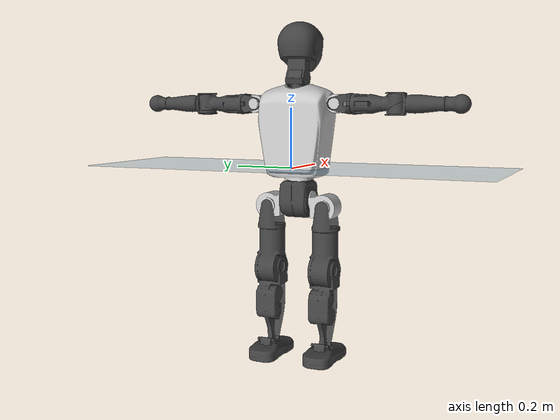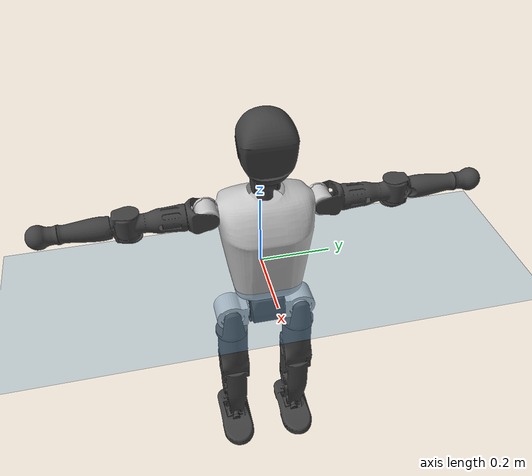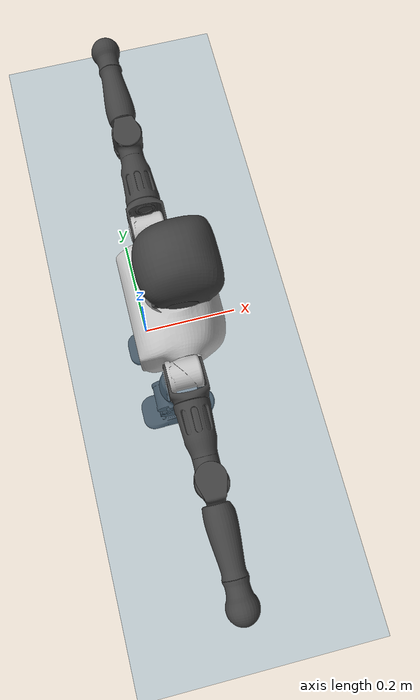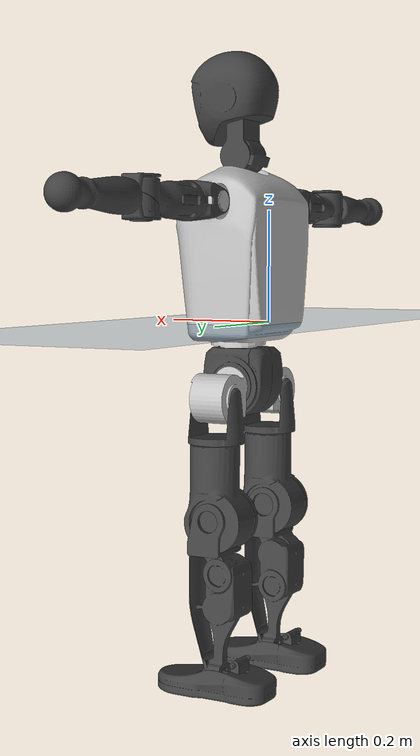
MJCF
<mujoco model="T1">
  <compiler angle="radian" assetdir="assets" balanceinertia="true" inertiafromgeom="false"/>

  <option timestep="0.005" density="1.2" viscosity="2e-05"/>

  <size nkey="1"/>

  <visual>
    <quality shadowsize="8192"/>
    <map shadowclip="0.5"/>
  </visual>

  <default>
    <default class="/">
      <joint armature="0.01" damping="0.01" frictionloss="0.1"/>
      <geom contype="0" conaffinity="0" group="1" solref="-1000 -80"/>
      <site size="0.01 0.005 0.005" group="5"/>
      <general forcelimited="true" biastype="affine" gainprm="25" biasprm="0 -25 -0.6"/>
      <default class="t1">
        <geom rgba="0.25 0.25 0.25 1"/>
        <default class="visual">
          <geom type="mesh" group="2"/>
        </default>
        <default class="collision">
          <geom group="3"/>
        </default>
        <default class="foot">
          <geom size="0.1115 0.05 0.015" type="box" condim="6" group="4" priority="1" solimp="0.015 1 0.015"/>
        </default>
        <default class="reward_collision_sphere">
          <geom group="5" rgba="1 0 0 1"/>
        </default>
      </default>
    </default>
  </default>

  <asset>
    <texture type="skybox" colorspace="auto" name="//unnamed_texture_0" builtin="gradient" rgb1="0.95 0.95 0.95" rgb2="0.95 0.95 0.95" width="100" height="600"/>
    <texture type="2d" colorspace="auto" name="texplane" builtin="checker" rgb1="0.345 0.575 0.748" rgb2="0.345 0.575 0.748" markrgb="1 1 1" width="512" height="512"/>
    <material name="MatPlane" class="/" texture="texplane" texuniform="true" texrepeat="2 2" specular="0.9"/>
    <mesh name="Trunk" class="/" file="Trunk.stl"/>
    <mesh name="H1" class="/" file="H1.stl"/>
    <mesh name="H2" class="/" file="H2.stl"/>
    <mesh name="AL1" class="/" file="AL1.stl"/>
    <mesh name="AL2" class="/" file="AL2.stl"/>
    <mesh name="AL3" class="/" file="AL3.stl"/>
    <mesh name="left_hand_link" class="/" file="left_hand_link.stl"/>
    <mesh name="AR1" class="/" file="AR1.stl"/>
    <mesh name="AR2" class="/" file="AR2.stl"/>
    <mesh name="AR3" class="/" file="AR3.stl"/>
    <mesh name="right_hand_link" class="/" file="right_hand_link.stl"/>
    <mesh name="Waist" class="/" file="Waist.stl"/>
    <mesh name="Hip_Pitch_Left" class="/" file="Hip_Pitch_Left.stl"/>
    <mesh name="Hip_Roll_Left" class="/" file="Hip_Roll_Left.stl"/>
    <mesh name="Hip_Yaw_Left" class="/" file="Hip_Yaw_Left.stl"/>
    <mesh name="Shank_Left" class="/" file="Shank_Left.stl"/>
    <mesh name="Ankle_Cross_Left" class="/" file="Ankle_Cross_Left.stl"/>
    <mesh name="left_foot_link" class="/" file="left_foot_link.stl"/>
    <mesh name="Hip_Pitch_Right" class="/" file="Hip_Pitch_Right.stl"/>
    <mesh name="Hip_Roll_Right" class="/" file="Hip_Roll_Right.stl"/>
    <mesh name="Hip_Yaw_Right" class="/" file="Hip_Yaw_Right.stl"/>
    <mesh name="Shank_Right" class="/" file="Shank_Right.stl"/>
    <mesh name="Ankle_Cross_Right" class="/" file="Ankle_Cross_Right.stl"/>
    <mesh name="right_foot_link" class="/" file="right_foot_link.stl"/>
  </asset>

  <worldbody>
    <geom name="floor" class="/" size="100 100 0.125" type="plane" group="0" material="MatPlane"/>
    <light name="toplight_shadow" class="/" pos="0 0 5" dir="0.0990148 0.0990148 -0.990148" type="directional" ambient="0.04 0.04 0.04" diffuse="0.55 0.55 0.55" specular="0.12 0.12 0.12"/>
    <light name="toplight_fill" class="/" pos="0 0 5" dir="0.0990148 0.0990148 -0.990148" type="directional" castshadow="false" ambient="0.04 0.04 0.04" diffuse="0.3 0.3 0.3" specular="0.08 0.08 0.08"/>
    <body name="trunk" childclass="t1" pos="0.000410364 -0.000215958 0.000393046" quat="1 0.000148741 -0.000463554 -0.000155855">
      <inertial pos="0.0452307 -0.00179197 0.101804" quat="0.999958 -0.000220963 -0.00916038 0.00041353" mass="9.14765" diaginertia="0.0360958 0.0590621 0.0491607"/>
      <joint name="//unnamed_joint_0" type="free" armature="0" damping="0" frictionloss="0"/>
      <geom name="//unnamed_geom_1" class="visual" rgba="0.76 0.76 0.76 1" mesh="Trunk"/>
      <geom name="//unnamed_geom_2" class="collision" size="0.0688059 0.0917412 0.137612" pos="0.0496976 0 0.117252" type="box"/>
      <geom name="//unnamed_geom_3" class="reward_collision_sphere" size="0.105502" pos="0.0496976 0 0.0977102"/>
      <geom name="//unnamed_geom_4" class="reward_collision_sphere" size="0.0137612" pos="0.0496976 0.0804816 0"/>
      <geom name="//unnamed_geom_5" class="reward_collision_sphere" size="0.0137612" pos="0.0496976 -0.0804816 0"/>
      <geom name="//unnamed_geom_6" class="reward_collision_sphere" size="0.0137612" pos="0.0496976 0.101312 0.175878"/>
      <geom name="//unnamed_geom_7" class="reward_collision_sphere" size="0.0137612" pos="0.0496976 -0.101312 0.175878"/>
      <site name="imu" pos="-0.0108371 0.0113276 -0.0105206" size="0.00917412"/>
      <camera name="track" pos="0 -1.89368 0" quat="0.707107 0.707107 0 0" mode="trackcom"/>
      <camera name="ego_camera" pos="0.101052 0 0.410383" quat="-0.5 -0.5 0.5 0.5"/>
      <body name="H1" pos="0.051151 0.000336008 0.238088" quat="0.999999 0.000342316 0.0002091 0.000993194">
        <inertial pos="-0.00125846 -0.000895937 0.055085" quat="0.763992 -0.0133941 0.00155937 0.645085" mass="0.360329" diaginertia="9.48674e-05 0.000171487 0.000136112"/>
        <joint name="AAHead_yaw" pos="0 0 0" axis="0.000600552 -0.000143894 1" range="-1.57336 1.57243" armature="0.0102626" damping="0.000494184" frictionloss="0.0902444"/>
        <geom name="//unnamed_geom_8" class="visual" mesh="H1"/>
        <body name="H2" pos="0.00189041 -0.000299392 0.0602763" quat="1 -0.000229904 -0.00012765 0.000153019">
          <inertial pos="0.00585286 0.00138176 0.0959246" quat="0.988452 0.105645 -0.074619 -0.0789508" mass="0.491855" diaginertia="0.000792918 0.00145828 0.00152845"/>
          <joint name="Head_pitch" pos="0 0 0" axis="0.00203431 -0.999993 -0.00315879" range="-1.21709 0.351538" armature="0.0086316" damping="0.00560866" frictionloss="0.0902145"/>
          <geom name="//unnamed_geom_9" class="visual" mesh="H2"/>
          <geom name="//unnamed_geom_10" class="collision" size="0.073393" pos="0.00828293 0 0.107481"/>
          <geom name="//unnamed_geom_11" class="reward_collision_sphere" size="0.0825671" pos="0.0165659 0 0.0977102"/>
        </body>
      </body>
      <body name="AL1" pos="0.0471819 0.100309 0.213012" quat="1 -0.000176765 0.000610026 -0.000513623">
        <inertial pos="-0.00080688 0.043687 -0.000201565" quat="0.50423 0.495701 -0.504277 0.495719" mass="0.411467" diaginertia="0.000532416 0.000995708 0.000263666"/>
        <joint name="Left_Shoulder_Pitch" pos="0 0 0" axis="-0.00334843 0.999994 -0.000397042" range="-3.32664 1.20958" armature="0.00963852" damping="0.0107061" frictionloss="0.0911019"/>
        <geom name="//unnamed_geom_12" class="visual" rgba="0.76 0.76 0.76 1" mesh="AL1"/>
        <body name="AL2" pos="0.00103871 0.0442225 1.98269e-05" quat="1 -7.86523e-05 5.97083e-05 -3.97821e-05">
          <inertial pos="0.00343558 0.0365571 0.00143771" quat="0.487919 0.513108 -0.48691 0.511443" mass="0.126876" diaginertia="0.000157248 0.000258009 0.000157199"/>
          <joint name="Left_Shoulder_Roll" pos="0 0 0" axis="-0.999999 -0.00119392 0.000458798" range="-1.53011 1.7824" armature="0.00827252" damping="0.00397536" frictionloss="0.0909854"/>
          <geom name="//unnamed_geom_13" class="visual" mesh="AL2"/>
          <body name="AL3" pos="0.00169709 0.0572002 -0.000996029" quat="1 -7.16544e-06 -3.54477e-05 1.09193e-05">
            <inertial pos="8.27077e-05 0.0806787 -7.82821e-05" quat="0.707151 0.707057 -0.00246371 0.00155722" mass="0.795743" diaginertia="0.00504058 0.00989402 0.000543728"/>
            <joint name="Left_Elbow_Pitch" pos="0 0 0" axis="-0.00722462 -0.99993 -0.00937786" range="-2.22932 2.29311" armature="0.00804521" damping="0.00264829" frictionloss="0.0886494"/>
            <geom name="//unnamed_geom_14" class="visual" mesh="AL3"/>
            <geom name="//unnamed_geom_15" class="collision" size="0.0275224 0.0688059" pos="0 0.0473421 0" quat="0.707105 0.707108 0 0" type="cylinder"/>
            <geom name="//unnamed_geom_16" class="reward_collision_sphere" size="0.0330268"/>
            <body name="left_hand_link" pos="-0.000105966 0.140522 0.00139952" quat="1 0.000356639 -0.000113719 0.000192441">
              <inertial pos="-0.000647465 0.103696 -8.56267e-05" quat="0.707753 0.70646 -0.000492067 -0.000229582" mass="0.25038" diaginertia="0.00321401 0.006279 0.000188839"/>
              <joint name="Left_Elbow_Yaw" pos="0 0 0" axis="0.00180762 -0.00296063 0.999994" range="-2.42874 0.00998575" armature="0.0102233" damping="0.01572" frictionloss="0.0924636"/>
              <geom name="//unnamed_geom_17" class="visual" mesh="left_hand_link"/>
              <geom name="//unnamed_geom_18" class="collision" size="0.0275224 0.0802736" pos="0 0.123089 0" quat="0.707105 0.707108 0 0" type="cylinder"/>
              <geom name="//unnamed_geom_19" class="reward_collision_sphere" size="0.0458706"/>
              <geom name="//unnamed_geom_20" class="reward_collision_sphere" size="0.0321094" pos="0 0.104153 0"/>
              <geom name="//unnamed_geom_21" class="reward_collision_sphere" size="0.0321094" pos="0 0.203571 0"/>
            </body>
          </body>
        </body>
      </body>
      <body name="AR1" pos="0.0457373 -0.0996693 0.213937" quat="1 -0.000210508 0.000456859 0.000202075">
        <inertial pos="-0.00305488 -0.0437933 0.00057544" quat="0.494162 0.497078 -0.507224 0.501439" mass="0.407676" diaginertia="0.000538338 0.000993567 0.000268507"/>
        <joint name="Right_Shoulder_Pitch" pos="0 0 0" axis="0.000167373 -0.999992 0.00395861" stiffness="0.00468219" range="-1.22668 3.31381" armature="0.00915317" damping="0.0064953" frictionloss="0.0888419"/>
        <geom name="//unnamed_geom_22" class="visual" rgba="0.76 0.76 0.76 1" mesh="AR1"/>
        <body name="AR2" pos="0.000203071 -0.0425674 -0.000203264" quat="1 3.03178e-05 0.000559375 -0.000306887">
          <inertial pos="0.00196624 -0.0356867 0.000112993" quat="0.512129 0.488343 -0.51132 0.487643" mass="0.122644" diaginertia="0.000157334 0.000268645 0.000156725"/>
          <joint name="Right_Shoulder_Roll" pos="0 0 0" axis="-0.999978 -0.00547266 -0.0036704" range="-1.74699 1.61712" armature="0.00877375" damping="0.00903479" frictionloss="0.0917965"/>
          <geom name="//unnamed_geom_23" class="visual" mesh="AR2"/>
          <body name="AR3" pos="-0.000735244 -0.0571145 -0.000954852" quat="1 2.88249e-05 -4.13969e-05 3.86354e-05">
            <inertial pos="-0.000481017 -0.0830061 0.00143801" quat="0.708074 0.706127 0.00078723 0.00384105" mass="0.77938" diaginertia="0.00497159 0.00962752 0.000559825"/>
            <joint name="Right_Elbow_Pitch" pos="0 0 0" axis="-0.00181197 0.999995 -0.00254607" range="-2.27131 2.2523" armature="0.0092489" damping="0.0144127" frictionloss="0.0916603"/>
            <geom name="//unnamed_geom_24" class="visual" mesh="AR3"/>
            <geom name="//unnamed_geom_25" class="collision" size="0.0275224 0.0688059" pos="0 -0.0473421 0" quat="0.707105 0.707108 0 0" type="cylinder"/>
            <geom name="//unnamed_geom_26" class="reward_collision_sphere" size="0.0330268"/>
            <body name="right_hand_link" pos="-0.000381239 -0.138779 -3.85406e-05" quat="1 -0.000102037 -0.000177243 0.000172471">
              <inertial pos="-0.000814833 -0.103342 -1.72217e-05" quat="0.704918 0.709288 -0.00144177 0.000100678" mass="0.256943" diaginertia="0.00316397 0.0062177 0.000190722"/>
              <joint name="Right_Elbow_Yaw" pos="0 0 0" axis="0.00179813 0.00120362 0.999998" range="0.00186146 2.4342" armature="0.0092342" damping="0.010016" frictionloss="0.0936705"/>
              <geom name="//unnamed_geom_27" class="visual" mesh="right_hand_link"/>
              <geom name="//unnamed_geom_28" class="collision" size="0.0275224 0.0802736" pos="0 -0.123089 0" quat="0.707105 0.707108 0 0" type="cylinder"/>
              <geom name="//unnamed_geom_29" class="reward_collision_sphere" size="0.0458706"/>
              <geom name="//unnamed_geom_30" class="reward_collision_sphere" size="0.0321094" pos="0 -0.104153 0"/>
              <geom name="//unnamed_geom_31" class="reward_collision_sphere" size="0.0321094" pos="0 -0.203571 0"/>
            </body>
          </body>
        </body>
      </body>
      <body name="Waist" pos="0.0534858 -0.00203215 -0.11305" quat="1 2.50981e-05 -0.000442059 -0.000109748">
        <inertial pos="-0.000867302 -0.000199631 0.00720672" quat="0.983529 0.00266808 -0.18072 0.00218605" mass="2.04321" diaginertia="0.00205735 0.0041266 0.00424591"/>
        <joint name="Waist" pos="0 0 0" axis="0.00912374 0.00494995 0.999946" range="-1.59262 1.5898" armature="0.00947266" damping="0.0245804" frictionloss="0.0932784"/>
        <geom name="//unnamed_geom_32" class="visual" mesh="Waist"/>
        <body name="Hip_Pitch_Left" pos="-0.00144702 0.101085 0.000348601" quat="0.999999 0.000355422 -0.000914301 -0.00111075">
          <inertial pos="-7.24259e-05 -0.00505443 -0.018307" quat="0.974992 0.221787 0.0139886 0.00227282" mass="0.759236" diaginertia="0.000683895 0.0010894 0.00111427"/>
          <joint name="Left_Hip_Pitch" pos="0 0 0" axis="0.00650887 0.999974 -0.0031423" range="-1.77967 1.57495" armature="0.00864965" damping="0.00803749" frictionloss="0.102293"/>
          <geom name="//unnamed_geom_33" class="visual" rgba="0.76 0.76 0.76 1" mesh="Hip_Pitch_Left"/>
          <body name="Hip_Roll_Left" pos="0.0027296 0.000818915 -0.0223003" quat="1 0.000834767 0.000165619 -0.000467586">
            <inertial pos="0.00148796 0.00080561 -0.0545757" quat="0.708731 -0.00670828 -0.00593057 0.705422" mass="0.293089" diaginertia="0.000673976 0.0011493 0.00045474"/>
            <joint name="Left_Hip_Roll" pos="0 0 0" axis="-0.999996 0.00275752 -0.000484513" range="-1.5705 0.202354" armature="0.00941763" damping="0.0166504" frictionloss="0.0919944"/>
            <geom name="//unnamed_geom_34" class="visual" mesh="Hip_Roll_Left"/>
            <geom name="//unnamed_geom_35" class="reward_collision_sphere" size="0.0504577"/>
            <body name="Hip_Yaw_Left" pos="0.00107744 -0.000902952 -0.0805635" quat="1 0.000247762 9.05492e-05 0.000213446">
              <inertial pos="-0.00516504 0.0019234 -0.0852317" quat="0.695275 -0.0328523 -0.027589 0.717462" mass="1.6587" diaginertia="0.00998263 0.0191569 0.00229726"/>
              <joint name="Left_Hip_Yaw" pos="0 0 0" axis="0.000920783 -0.006611 -0.999978" range="-1.01608 1.00588" armature="0.009246" damping="0.0125001" frictionloss="0.0932709"/>
              <geom name="//unnamed_geom_36" class="visual" mesh="Hip_Yaw_Left"/>
              <geom name="//unnamed_geom_37" class="collision" size="0.0458706 0.073393" type="cylinder"/>
              <body name="Shank_Left" pos="-0.00917595 -0.000392497 -0.131212" quat="1 0.000207023 0.000309367 -0.000344935">
                <inertial pos="-0.0053538 0.000693465 -0.122516" quat="0.997259 -0.00161894 -0.0176533 0.0718278" mass="1.35189" diaginertia="0.0135935 0.0263736 0.00166956"/>
                <joint name="Left_Knee_Pitch" pos="0 0 0" axis="0.00113143 0.999999 0.000547713" range="0.00319668 2.30813" armature="0.00962794" damping="0.00826383" frictionloss="0.0915903"/>
                <geom name="//unnamed_geom_38" class="visual" mesh="Shank_Left"/>
                <geom name="//unnamed_geom_39" class="collision" size="0.0458706 0.0688059" pos="0 0 -0.117252" type="cylinder"/>
                <geom name="//unnamed_geom_40" class="reward_collision_sphere" size="0.0596318"/>
                <body name="Ankle_Cross_Left" pos="-0.000690029 -0.00116803 -0.27386" quat="1 0.000209233 -0.000184744 -0.000144135">
                  <inertial pos="-0.00333689 0.000525157 -0.00885774" quat="0.446038 0.549771 0.552572 0.439849" mass="0.0557898" diaginertia="1.13492e-05 1.93098e-05 1.00164e-05"/>
                  <joint name="Left_Ankle_Pitch" pos="0 0 0" axis="0.00258731 0.999995 -0.00176725" range="-0.915351 0.39325" armature="0.00915632" damping="0" frictionloss="0.0916434"/>
                  <geom name="//unnamed_geom_41" class="visual" mesh="Ankle_Cross_Left"/>
                  <body name="left_foot_link" pos="-0.000805148 0.00061842 -0.0138292" quat="0.999999 0.000475824 -0.000977343 -0.000468805">
                    <inertial pos="0.000886618 -0.000806723 -0.00832815" quat="-0.00179411 0.616688 0.00180909 0.787203" mass="0.544359" diaginertia="0.00109559 0.00187534 0.00207061"/>
                    <joint name="Left_Ankle_Roll" pos="0 0 0" axis="-0.999994 0.00211941 -0.0025711" stiffness="0.00220775" range="-0.445035 0.486914" armature="0.00923783" damping="0.010871" frictionloss="0.103273"/>
                    <geom name="//unnamed_geom_42" class="visual" mesh="left_foot_link"/>
                    <geom name="left_foot" class="foot" size="0.105952 0.0430589 0.0151936" pos="0.00828293 0 -0.0146565"/>
                    <geom name="//unnamed_geom_44" class="reward_collision_sphere" size="0.0477054" pos="0.00828293 0 -0.0146565"/>
                    <geom name="//unnamed_geom_45" class="reward_collision_sphere" size="0.0275224" pos="0.0786878 -0.0217774 -0.0146565"/>
                    <geom name="//unnamed_geom_46" class="reward_collision_sphere" size="0.0275224" pos="-0.0579805 -0.0217774 -0.0146565"/>
                    <site name="left_foot" class="foot" pos="0.00828293 0 -0.0146565" size="0.00917412"/>
                  </body>
                </body>
              </body>
            </body>
          </body>
        </body>
        <body name="Hip_Pitch_Right" pos="0.000105707 -0.100369 -0.000273823" quat="1 3.62522e-05 2.52294e-05 7.86631e-05">
          <inertial pos="0.00148538 0.00697608 -0.0168207" quat="0.973917 -0.226708 0.00790237 0.00510996" mass="0.773729" diaginertia="0.000681681 0.0010736 0.00109311"/>
          <joint name="Right_Hip_Pitch" pos="0 0 0" axis="2.6639e-05 -0.999999 -0.00154357" stiffness="0.00291616" range="-1.562 1.80284" armature="0.00883119" damping="0.00755983" frictionloss="0.0902948"/>
          <geom name="//unnamed_geom_47" class="visual" rgba="0.76 0.76 0.76 1" mesh="Hip_Pitch_Right"/>
          <body name="Hip_Roll_Right" pos="0.000770611 0.000200146 -0.0214857" quat="1 0.000201704 5.00592e-05 -9.0156e-05">
            <inertial pos="0.000809262 -0.00045707 -0.0523185" quat="0.708277 -0.0102023 -0.00524518 0.705841" mass="0.290214" diaginertia="0.000675744 0.00115064 0.00044454"/>
            <joint name="Right_Hip_Roll" pos="0 0 0" axis="-0.999997 -6.07599e-05 0.00260905" range="-0.196049 1.57054" armature="0.00927466" damping="0.00741136" frictionloss="0.0907147"/>
            <geom name="//unnamed_geom_48" class="visual" mesh="Hip_Roll_Right"/>
            <geom name="//unnamed_geom_49" class="reward_collision_sphere" size="0.0504577"/>
            <body name="Hip_Yaw_Right" pos="-0.00127711 0.0020794 -0.080606" quat="1 8.11857e-05 5.87473e-05 -2.77326e-05">
              <inertial pos="-0.00650817 -0.000262252 -0.0896605" quat="0.712169 -0.0362351 -0.0370863 0.70009" mass="1.69929" diaginertia="0.0100138 0.019271 0.00230914"/>
              <joint name="Right_Hip_Yaw" pos="0 0 0" axis="-4.27342e-05 0.000192965 -1" range="-0.970349 1.00469" armature="0.00938963" damping="0.0124131" frictionloss="0.0922869"/>
              <geom name="//unnamed_geom_50" class="visual" mesh="Hip_Yaw_Right"/>
              <geom name="//unnamed_geom_51" class="collision" size="0.0458706 0.073393" type="cylinder"/>
              <body name="Shank_Right" pos="-0.011799 0.000454401 -0.130433" quat="1 -0.000205107 0.000129951 -5.87668e-05">
                <inertial pos="-0.0025243 -0.00112978 -0.119045" quat="0.999124 -0.00227839 -0.0199455 -0.0367177" mass="1.3465" diaginertia="0.0134517 0.0266722 0.00171824"/>
                <joint name="Right_Knee_Pitch" pos="0 0 0" axis="0.00396154 -0.999987 -0.00320855" range="-2.3418 -0.00370975" armature="0.00924281" damping="0.000177815" frictionloss="0.0969624"/>
                <geom name="//unnamed_geom_52" class="visual" mesh="Shank_Right"/>
                <geom name="//unnamed_geom_53" class="collision" size="0.0458706 0.0688059" pos="0 0 -0.117252" type="cylinder"/>
                <geom name="//unnamed_geom_54" class="reward_collision_sphere" size="0.0596318"/>
                <body name="Ankle_Cross_Right" pos="0.00134687 -0.0031335 -0.273956" quat="0.999999 -0.000861079 -1.34447e-05 -0.000755763">
                  <inertial pos="-0.00243332 0.000600063 -0.00792291" quat="0.443173 0.550837 0.551276 0.443025" mass="0.0566915" diaginertia="1.10837e-05 1.95838e-05 1.02728e-05"/>
                  <joint name="Right_Ankle_Pitch" pos="0 0 0" axis="0.00631091 -0.99998 0.000883746" range="-0.338769 0.915469" armature="0.00892266" damping="0.013383" frictionloss="0.0911721"/>
                  <geom name="//unnamed_geom_55" class="visual" mesh="Ankle_Cross_Right"/>
                  <body name="right_foot_link" pos="0.0001793 -0.000973626 -0.0118091" quat="1 0.000206466 0.000282709 -0.00051862">
                    <inertial pos="-0.00109835 -0.000114007 -0.00883851" quat="-0.00413133 0.620674 0.00296583 0.784052" mass="0.529024" diaginertia="0.00102433 0.00180688 0.00197576"/>
                    <joint name="Right_Ankle_Roll" pos="0 0 0" axis="-0.999992 0.00364975 0.00139584" range="-0.442365 0.450633" armature="0.0087277" damping="0.00745609" frictionloss="0.0886104"/>
                    <geom name="//unnamed_geom_56" class="visual" mesh="right_foot_link"/>
                    <geom name="right_foot" class="foot" size="0.102042 0.0439136 0.0138669" pos="0.00828293 0 -0.0146565"/>
                    <geom name="//unnamed_geom_58" class="reward_collision_sphere" size="0.0366965"/>
                    <geom name="//unnamed_geom_59" class="reward_collision_sphere" size="0.0275224" pos="0.00828293 0 -0.0146565"/>
                    <geom name="//unnamed_geom_60" class="reward_collision_sphere" size="0.0275224" pos="0.0786878 0.0217774 -0.0146565"/>
                    <geom name="//unnamed_geom_61" class="reward_collision_sphere" size="0.0275224" pos="-0.0579805 0.0217774 -0.0146565"/>
                    <site name="right_foot" class="foot" pos="0.00828293 0 -0.0146565" size="0.00917412"/>
                  </body>
                </body>
              </body>
            </body>
          </body>
        </body>
      </body>
    </body>
  </worldbody>

  <contact>
    <pair class="/" geom1="floor" geom2="left_foot" name="//unnamed_contact_0"/>
    <pair class="/" geom1="floor" geom2="right_foot" name="//unnamed_contact_1"/>
  </contact>

  <actuator>
    <general name="AAHead_yaw" class="/" joint="AAHead_yaw" forcerange="-6.66792 6.66792" gainprm="21.5881" biasprm="0 -21.5881 -0.549935"/>
    <general name="Head_pitch" class="/" joint="Head_pitch" forcerange="-6.22951 6.22951" gainprm="21.5881" biasprm="0 -21.5881 -0.549935"/>
    <general name="Left_Shoulder_Pitch" class="/" joint="Left_Shoulder_Pitch" forcerange="-16.6581 16.6581" gainprm="21.5881" biasprm="0 -21.5881 -0.549935"/>
    <general name="Left_Shoulder_Roll" class="/" joint="Left_Shoulder_Roll" forcerange="-16.6374 16.6374" gainprm="21.5881" biasprm="0 -21.5881 -0.549935"/>
    <general name="Left_Elbow_Pitch" class="/" joint="Left_Elbow_Pitch" forcerange="-15.1368 15.1368" gainprm="21.5881" biasprm="0 -21.5881 -0.549935"/>
    <general name="Left_Elbow_Yaw" class="/" joint="Left_Elbow_Yaw" forcerange="-17.7747 17.7747" gainprm="21.5881" biasprm="0 -21.5881 -0.549935"/>
    <general name="Right_Shoulder_Pitch" class="/" joint="Right_Shoulder_Pitch" forcerange="-17.8815 17.8815" gainprm="21.5881" biasprm="0 -21.5881 -0.549935"/>
    <general name="Right_Shoulder_Roll" class="/" joint="Right_Shoulder_Roll" forcerange="-17.101 17.101" gainprm="21.5881" biasprm="0 -21.5881 -0.549935"/>
    <general name="Right_Elbow_Pitch" class="/" joint="Right_Elbow_Pitch" forcerange="-16.5012 16.5012" gainprm="21.5881" biasprm="0 -21.5881 -0.549935"/>
    <general name="Right_Elbow_Yaw" class="/" joint="Right_Elbow_Yaw" forcerange="-16.4639 16.4639" gainprm="21.5881" biasprm="0 -21.5881 -0.549935"/>
    <general name="Waist" class="/" joint="Waist" forcerange="-27.2671 27.2671" gainprm="21.5881" biasprm="0 -21.5881 -0.549935"/>
    <general name="Left_Hip_Pitch" class="/" joint="Left_Hip_Pitch" forcerange="-42.695 42.695" gainprm="21.5881" biasprm="0 -21.5881 -0.549935"/>
    <general name="Left_Hip_Roll" class="/" joint="Left_Hip_Roll" forcerange="-29.6019 29.6019" gainprm="21.5881" biasprm="0 -21.5881 -0.549935"/>
    <general name="Left_Hip_Yaw" class="/" joint="Left_Hip_Yaw" forcerange="-25.1695 25.1695" gainprm="21.5881" biasprm="0 -21.5881 -0.549935"/>
    <general name="Left_Knee_Pitch" class="/" joint="Left_Knee_Pitch" forcerange="-49.9549 49.9549" gainprm="21.5881" biasprm="0 -21.5881 -0.549935"/>
    <general name="Left_Ankle_Pitch" class="/" joint="Left_Ankle_Pitch" forcerange="-18.1113 18.1113" gainprm="21.5881" biasprm="0 -21.5881 -0.549935"/>
    <general name="Left_Ankle_Roll" class="/" joint="Left_Ankle_Roll" forcerange="-13.8223 13.8223" gainprm="21.5881" biasprm="0 -21.5881 -0.549935"/>
    <general name="Right_Hip_Pitch" class="/" joint="Right_Hip_Pitch" forcerange="-39.7432 39.7432" gainprm="21.5881" biasprm="0 -21.5881 -0.549935"/>
    <general name="Right_Hip_Roll" class="/" joint="Right_Hip_Roll" forcerange="-27.7496 27.7496" gainprm="21.5881" biasprm="0 -21.5881 -0.549935"/>
    <general name="Right_Hip_Yaw" class="/" joint="Right_Hip_Yaw" forcerange="-27.1266 27.1266" gainprm="21.5881" biasprm="0 -21.5881 -0.549935"/>
    <general name="Right_Knee_Pitch" class="/" joint="Right_Knee_Pitch" forcerange="-54.5213 54.5213" gainprm="21.5881" biasprm="0 -21.5881 -0.549935"/>
    <general name="Right_Ankle_Pitch" class="/" joint="Right_Ankle_Pitch" forcerange="-17.2413 17.2413" gainprm="21.5881" biasprm="0 -21.5881 -0.549935"/>
    <general name="Right_Ankle_Roll" class="/" joint="Right_Ankle_Roll" forcerange="-13.7294 13.7294" gainprm="21.5881" biasprm="0 -21.5881 -0.549935"/>
  </actuator>

  <sensor>
    <gyro site="imu" name="imu_angular_velocity"/>
    <velocimeter site="imu" name="imu_linear_velocity"/>
    <framelinvel objtype="site" objname="left_foot" name="left_foot_global_linear_velocity"/>
    <framelinvel objtype="site" objname="right_foot" name="right_foot_global_linear_velocity"/>
  </sensor>

  <keyframe>
    <key name="home" qpos="0 0 0.6385 1 0 0 0 0 0 0 1.4 0 -0.4 0 -1.4 0 0.4 0 -0.4 0 0 0.8 -0.4 0 0.4 0 0 -0.8 0.4 0"/>
  </keyframe>
</mujoco>
